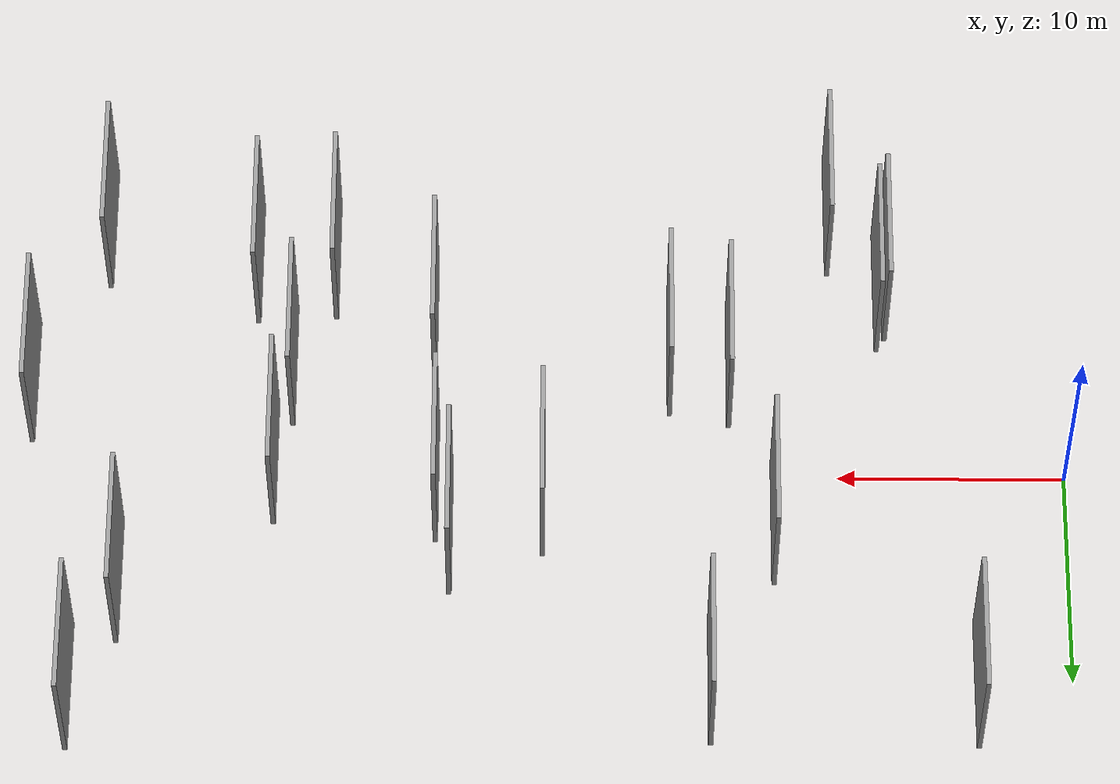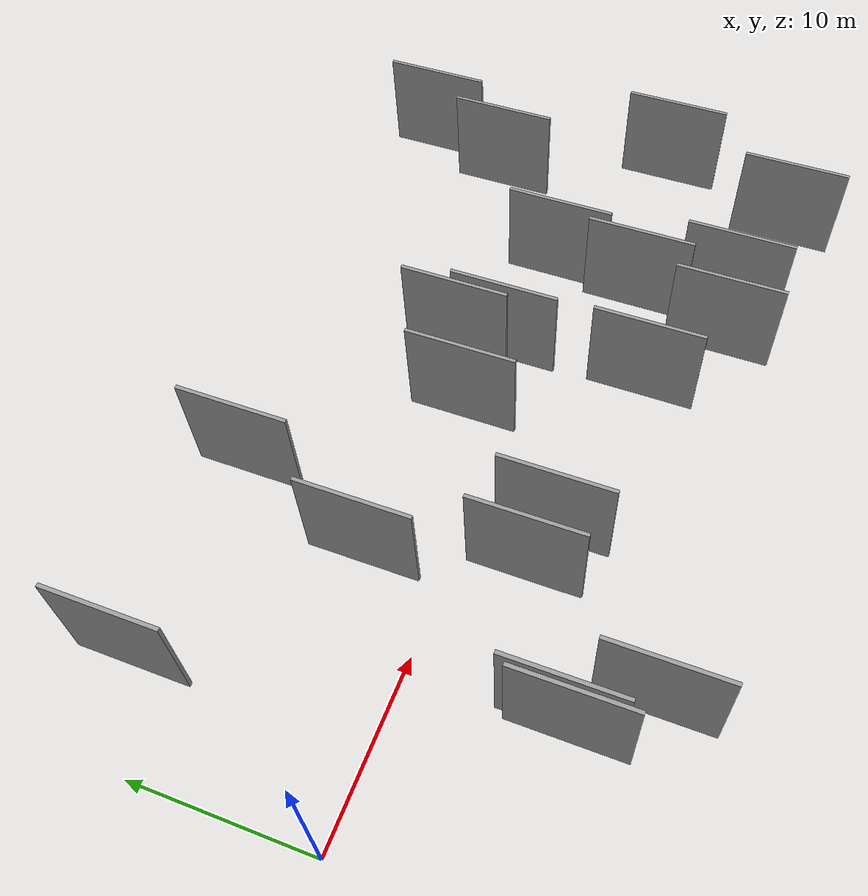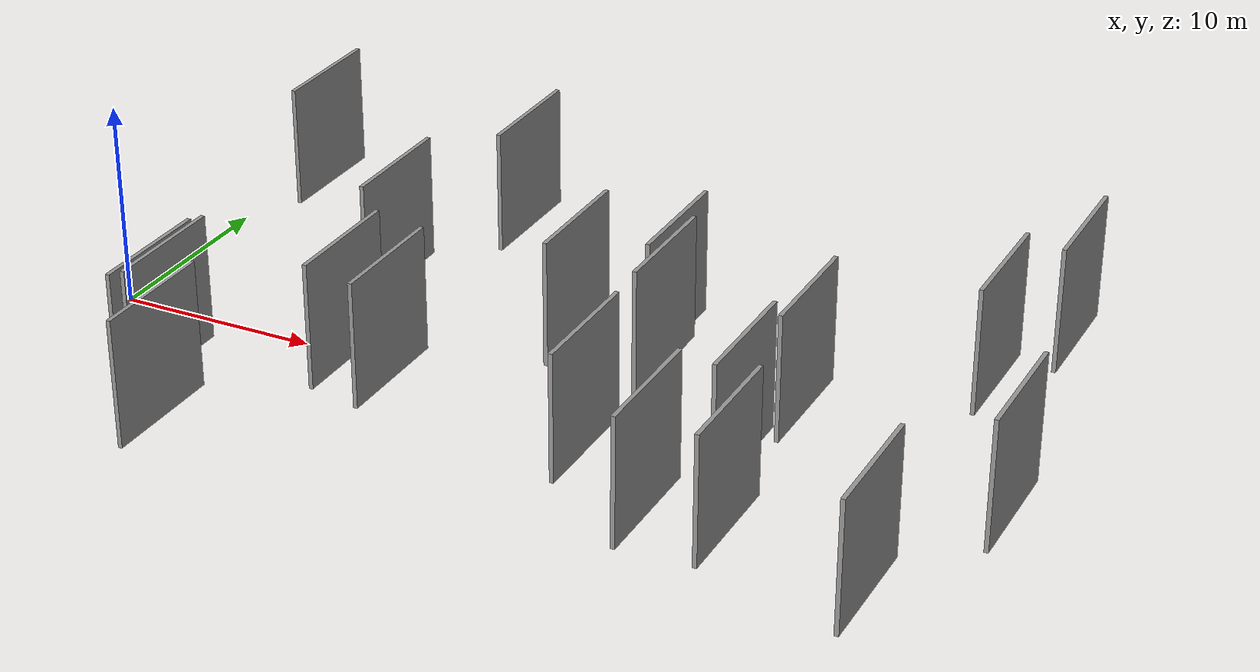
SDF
<sdf version="1.6">
 <world name="default">
  <scene>
   <sky><clouds><speed>12</speed></clouds></sky>
   <ambient>0.4 0.4 0.4 1</ambient>
   <background>0.7 0.7 0.7 1</background>
   <shadows>1</shadows>
  </scene>
  <gravity>0 0 -9.8066</gravity>
  <magnetic_field>6e-06 2.3e-05 -4.2e-05</magnetic_field>
  <physics default="0" name="default_physics" type="ode">
   <ode>
    <solver>
     <type>quick</type>
     <iters>10</iters>
     <sor>1.0</sor>
     <use_dynamic_moi_rescaling>0</use_dynamic_moi_rescaling>
    </solver>
    <constraints>
     <cfm>0</cfm>
     <erp>0.2</erp>
     <contact_max_correcting_vel>100</contact_max_correcting_vel>
     <contact_surface_layer>0.001</contact_surface_layer>
    </constraints>
   </ode>
   <max_step_size>0.004</max_step_size>
   <real_time_factor>1</real_time_factor>
   <real_time_update_rate>250</real_time_update_rate>
  </physics>
  <light name="sun" type="directional">
   <pose>0 0 10 0 0 0</pose>
   <diffuse>0.8 0.8 0.8 1</diffuse>
   <specular>0.2 0.2 0.2 1</specular>
   <attenuation>
    <range>1000</range>
    <constant>0.9</constant>
    <linear>0.01</linear>
    <quadratic>0.001</quadratic>
   </attenuation>
   <direction>-0.5 0.1 -0.9</direction>
  </light>
  <model name="grey_wall_1">
   <static>1</static>
   <pose>17.4375 -4.7015 2.5 0.000000 0.000000 1.570796</pose>
   <link name="link">
    <pose>0 0 3.00 0 0 0</pose>
    <collision name="collision"><geometry><box><size>6.00 0.2 6.00</size></box></geometry></collision>
    <visual name="visual">
     <cast_shadows>0</cast_shadows>
     <geometry><box><size>6.00 0.2 6.00</size></box></geometry>
     <material>
      <script>
       <uri>model://grey_wall/materials/scripts</uri>
       <uri>model://grey_wall/materials/textures</uri>
       <name>vrc/grey_wall</name>
      </script>
     </material>
    </visual>
   </link>
  </model>
  <model name="grey_wall_2">
   <static>1</static>
   <pose>15.7489 11.3140 2.5 0.000000 0.000000 1.570796</pose>
   <link name="link">
    <pose>0 0 3.00 0 0 0</pose>
    <collision name="collision"><geometry><box><size>6.00 0.2 6.00</size></box></geometry></collision>
    <visual name="visual">
     <cast_shadows>0</cast_shadows>
     <geometry><box><size>6.00 0.2 6.00</size></box></geometry>
     <material>
      <script>
       <uri>model://grey_wall/materials/scripts</uri>
       <uri>model://grey_wall/materials/textures</uri>
       <name>vrc/grey_wall</name>
      </script>
     </material>
    </visual>
   </link>
  </model>
  <model name="grey_wall_3">
   <static>1</static>
   <pose>27.7376 -6.3030 2.5 0.000000 0.000000 1.570796</pose>
   <link name="link">
    <pose>0 0 3.00 0 0 0</pose>
    <collision name="collision"><geometry><box><size>6.00 0.2 6.00</size></box></geometry></collision>
    <visual name="visual">
     <cast_shadows>0</cast_shadows>
     <geometry><box><size>6.00 0.2 6.00</size></box></geometry>
     <material>
      <script>
       <uri>model://grey_wall/materials/scripts</uri>
       <uri>model://grey_wall/materials/textures</uri>
       <name>vrc/grey_wall</name>
      </script>
     </material>
    </visual>
   </link>
  </model>
  <model name="grey_wall_4">
   <static>1</static>
   <pose>42.2016 -11.0937 2.5 0.000000 0.000000 1.570796</pose>
   <link name="link">
    <pose>0 0 3.00 0 0 0</pose>
    <collision name="collision"><geometry><box><size>6.00 0.2 6.00</size></box></geometry></collision>
    <visual name="visual">
     <cast_shadows>0</cast_shadows>
     <geometry><box><size>6.00 0.2 6.00</size></box></geometry>
     <material>
      <script>
       <uri>model://grey_wall/materials/scripts</uri>
       <uri>model://grey_wall/materials/textures</uri>
       <name>vrc/grey_wall</name>
      </script>
     </material>
    </visual>
   </link>
  </model>
  <model name="grey_wall_5">
   <static>1</static>
   <pose>26.9525 4.1872 2.5 0.000000 0.000000 1.570796</pose>
   <link name="link">
    <pose>0 0 3.00 0 0 0</pose>
    <collision name="collision"><geometry><box><size>6.00 0.2 6.00</size></box></geometry></collision>
    <visual name="visual">
     <cast_shadows>0</cast_shadows>
     <geometry><box><size>6.00 0.2 6.00</size></box></geometry>
     <material>
      <script>
       <uri>model://grey_wall/materials/scripts</uri>
       <uri>model://grey_wall/materials/textures</uri>
       <name>vrc/grey_wall</name>
      </script>
     </material>
    </visual>
   </link>
  </model>
  <model name="grey_wall_6">
   <static>1</static>
   <pose>43.0986 11.7236 2.5 0.000000 0.000000 1.570796</pose>
   <link name="link">
    <pose>0 0 3.00 0 0 0</pose>
    <collision name="collision"><geometry><box><size>6.00 0.2 6.00</size></box></geometry></collision>
    <visual name="visual">
     <cast_shadows>0</cast_shadows>
     <geometry><box><size>6.00 0.2 6.00</size></box></geometry>
     <material>
      <script>
       <uri>model://grey_wall/materials/scripts</uri>
       <uri>model://grey_wall/materials/textures</uri>
       <name>vrc/grey_wall</name>
      </script>
     </material>
    </visual>
   </link>
  </model>
  <model name="grey_wall_7">
   <static>1</static>
   <pose>10.4127 -11.9285 2.5 0.000000 0.000000 1.570796</pose>
   <link name="link">
    <pose>0 0 3.00 0 0 0</pose>
    <collision name="collision"><geometry><box><size>6.00 0.2 6.00</size></box></geometry></collision>
    <visual name="visual">
     <cast_shadows>0</cast_shadows>
     <geometry><box><size>6.00 0.2 6.00</size></box></geometry>
     <material>
      <script>
       <uri>model://grey_wall/materials/scripts</uri>
       <uri>model://grey_wall/materials/textures</uri>
       <name>vrc/grey_wall</name>
      </script>
     </material>
    </visual>
   </link>
  </model>
  <model name="grey_wall_8">
   <static>1</static>
   <pose>8.2979 -8.0572 2.5 0.000000 0.000000 1.570796</pose>
   <link name="link">
    <pose>0 0 3.00 0 0 0</pose>
    <collision name="collision"><geometry><box><size>6.00 0.2 6.00</size></box></geometry></collision>
    <visual name="visual">
     <cast_shadows>0</cast_shadows>
     <geometry><box><size>6.00 0.2 6.00</size></box></geometry>
     <material>
      <script>
       <uri>model://grey_wall/materials/scripts</uri>
       <uri>model://grey_wall/materials/textures</uri>
       <name>vrc/grey_wall</name>
      </script>
     </material>
    </visual>
   </link>
  </model>
  <model name="grey_wall_9">
   <static>1</static>
   <pose>27.5819 1.6180 2.5 0.000000 0.000000 1.570796</pose>
   <link name="link">
    <pose>0 0 3.00 0 0 0</pose>
    <collision name="collision"><geometry><box><size>6.00 0.2 6.00</size></box></geometry></collision>
    <visual name="visual">
     <cast_shadows>0</cast_shadows>
     <geometry><box><size>6.00 0.2 6.00</size></box></geometry>
     <material>
      <script>
       <uri>model://grey_wall/materials/scripts</uri>
       <uri>model://grey_wall/materials/textures</uri>
       <name>vrc/grey_wall</name>
      </script>
     </material>
    </visual>
   </link>
  </model>
  <model name="grey_wall_10">
   <static>1</static>
   <pose>35.5796 -9.3482 2.5 0.000000 0.000000 1.570796</pose>
   <link name="link">
    <pose>0 0 3.00 0 0 0</pose>
    <collision name="collision"><geometry><box><size>6.00 0.2 6.00</size></box></geometry></collision>
    <visual name="visual">
     <cast_shadows>0</cast_shadows>
     <geometry><box><size>6.00 0.2 6.00</size></box></geometry>
     <material>
      <script>
       <uri>model://grey_wall/materials/scripts</uri>
       <uri>model://grey_wall/materials/textures</uri>
       <name>vrc/grey_wall</name>
      </script>
     </material>
    </visual>
   </link>
  </model>
  <model name="grey_wall_11">
   <static>1</static>
   <pose>34.6213 0.7953 2.5 0.000000 0.000000 1.570796</pose>
   <link name="link">
    <pose>0 0 3.00 0 0 0</pose>
    <collision name="collision"><geometry><box><size>6.00 0.2 6.00</size></box></geometry></collision>
    <visual name="visual">
     <cast_shadows>0</cast_shadows>
     <geometry><box><size>6.00 0.2 6.00</size></box></geometry>
     <material>
      <script>
       <uri>model://grey_wall/materials/scripts</uri>
       <uri>model://grey_wall/materials/textures</uri>
       <name>vrc/grey_wall</name>
      </script>
     </material>
    </visual>
   </link>
  </model>
  <model name="grey_wall_12">
   <static>1</static>
   <pose>22.9550 2.2662 2.5 0.000000 0.000000 1.570796</pose>
   <link name="link">
    <pose>0 0 3.00 0 0 0</pose>
    <collision name="collision"><geometry><box><size>6.00 0.2 6.00</size></box></geometry></collision>
    <visual name="visual">
     <cast_shadows>0</cast_shadows>
     <geometry><box><size>6.00 0.2 6.00</size></box></geometry>
     <material>
      <script>
       <uri>model://grey_wall/materials/scripts</uri>
       <uri>model://grey_wall/materials/textures</uri>
       <name>vrc/grey_wall</name>
      </script>
     </material>
    </visual>
   </link>
  </model>
  <model name="grey_wall_13">
   <static>1</static>
   <pose>45.2781 -3.2357 2.5 0.000000 0.000000 1.570796</pose>
   <link name="link">
    <pose>0 0 3.00 0 0 0</pose>
    <collision name="collision"><geometry><box><size>6.00 0.2 6.00</size></box></geometry></collision>
    <visual name="visual">
     <cast_shadows>0</cast_shadows>
     <geometry><box><size>6.00 0.2 6.00</size></box></geometry>
     <material>
      <script>
       <uri>model://grey_wall/materials/scripts</uri>
       <uri>model://grey_wall/materials/textures</uri>
       <name>vrc/grey_wall</name>
      </script>
     </material>
    </visual>
   </link>
  </model>
  <model name="grey_wall_14">
   <static>1</static>
   <pose>14.8446 -4.1291 2.5 0.000000 0.000000 1.570796</pose>
   <link name="link">
    <pose>0 0 3.00 0 0 0</pose>
    <collision name="collision"><geometry><box><size>6.00 0.2 6.00</size></box></geometry></collision>
    <visual name="visual">
     <cast_shadows>0</cast_shadows>
     <geometry><box><size>6.00 0.2 6.00</size></box></geometry>
     <material>
      <script>
       <uri>model://grey_wall/materials/scripts</uri>
       <uri>model://grey_wall/materials/textures</uri>
       <name>vrc/grey_wall</name>
      </script>
     </material>
    </visual>
   </link>
  </model>
  <model name="grey_wall_15">
   <static>1</static>
   <pose>41.1762 6.6184 2.5 0.000000 0.000000 1.570796</pose>
   <link name="link">
    <pose>0 0 3.00 0 0 0</pose>
    <collision name="collision"><geometry><box><size>6.00 0.2 6.00</size></box></geometry></collision>
    <visual name="visual">
     <cast_shadows>0</cast_shadows>
     <geometry><box><size>6.00 0.2 6.00</size></box></geometry>
     <material>
      <script>
       <uri>model://grey_wall/materials/scripts</uri>
       <uri>model://grey_wall/materials/textures</uri>
       <name>vrc/grey_wall</name>
      </script>
     </material>
    </visual>
   </link>
  </model>
  <model name="grey_wall_16">
   <static>1</static>
   <pose>12.9620 3.6148 2.5 0.000000 0.000000 1.570796</pose>
   <link name="link">
    <pose>0 0 3.00 0 0 0</pose>
    <collision name="collision"><geometry><box><size>6.00 0.2 6.00</size></box></geometry></collision>
    <visual name="visual">
     <cast_shadows>0</cast_shadows>
     <geometry><box><size>6.00 0.2 6.00</size></box></geometry>
     <material>
      <script>
       <uri>model://grey_wall/materials/scripts</uri>
       <uri>model://grey_wall/materials/textures</uri>
       <name>vrc/grey_wall</name>
      </script>
     </material>
    </visual>
   </link>
  </model>
  <model name="grey_wall_17">
   <static>1</static>
   <pose>4.3700 11.4028 2.5 0.000000 0.000000 1.570796</pose>
   <link name="link">
    <pose>0 0 3.00 0 0 0</pose>
    <collision name="collision"><geometry><box><size>6.00 0.2 6.00</size></box></geometry></collision>
    <visual name="visual">
     <cast_shadows>0</cast_shadows>
     <geometry><box><size>6.00 0.2 6.00</size></box></geometry>
     <material>
      <script>
       <uri>model://grey_wall/materials/scripts</uri>
       <uri>model://grey_wall/materials/textures</uri>
       <name>vrc/grey_wall</name>
      </script>
     </material>
    </visual>
   </link>
  </model>
  <model name="grey_wall_18">
   <static>1</static>
   <pose>7.9361 -8.5827 2.5 0.000000 0.000000 1.570796</pose>
   <link name="link">
    <pose>0 0 3.00 0 0 0</pose>
    <collision name="collision"><geometry><box><size>6.00 0.2 6.00</size></box></geometry></collision>
    <visual name="visual">
     <cast_shadows>0</cast_shadows>
     <geometry><box><size>6.00 0.2 6.00</size></box></geometry>
     <material>
      <script>
       <uri>model://grey_wall/materials/scripts</uri>
       <uri>model://grey_wall/materials/textures</uri>
       <name>vrc/grey_wall</name>
      </script>
     </material>
    </visual>
   </link>
  </model>
  <model name="grey_wall_19">
   <static>1</static>
   <pose>33.9229 -4.1304 2.5 0.000000 0.000000 1.570796</pose>
   <link name="link">
    <pose>0 0 3.00 0 0 0</pose>
    <collision name="collision"><geometry><box><size>6.00 0.2 6.00</size></box></geometry></collision>
    <visual name="visual">
     <cast_shadows>0</cast_shadows>
     <geometry><box><size>6.00 0.2 6.00</size></box></geometry>
     <material>
      <script>
       <uri>model://grey_wall/materials/scripts</uri>
       <uri>model://grey_wall/materials/textures</uri>
       <name>vrc/grey_wall</name>
      </script>
     </material>
    </visual>
   </link>
  </model>
  <model name="grey_wall_20">
   <static>1</static>
   <pose>32.1508 -9.5584 2.5 0.000000 0.000000 1.570796</pose>
   <link name="link">
    <pose>0 0 3.00 0 0 0</pose>
    <collision name="collision"><geometry><box><size>6.00 0.2 6.00</size></box></geometry></collision>
    <visual name="visual">
     <cast_shadows>0</cast_shadows>
     <geometry><box><size>6.00 0.2 6.00</size></box></geometry>
     <material>
      <script>
       <uri>model://grey_wall/materials/scripts</uri>
       <uri>model://grey_wall/materials/textures</uri>
       <name>vrc/grey_wall</name>
      </script>
     </material>
    </visual>
   </link>
  </model>
 </world>
</sdf>
